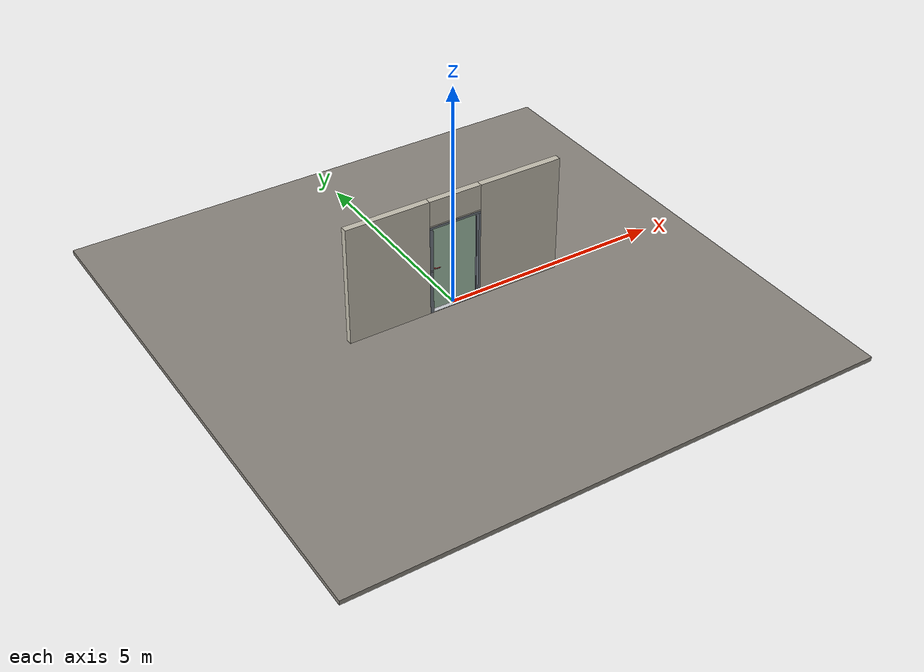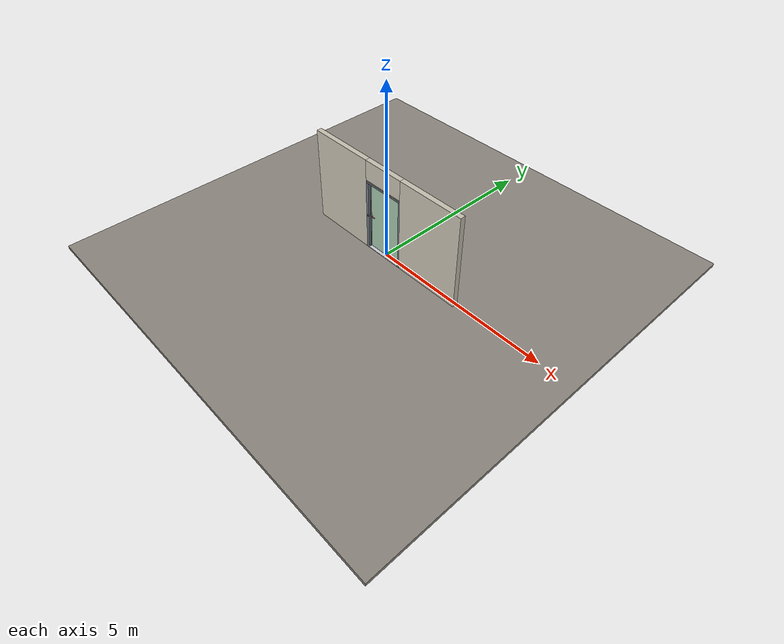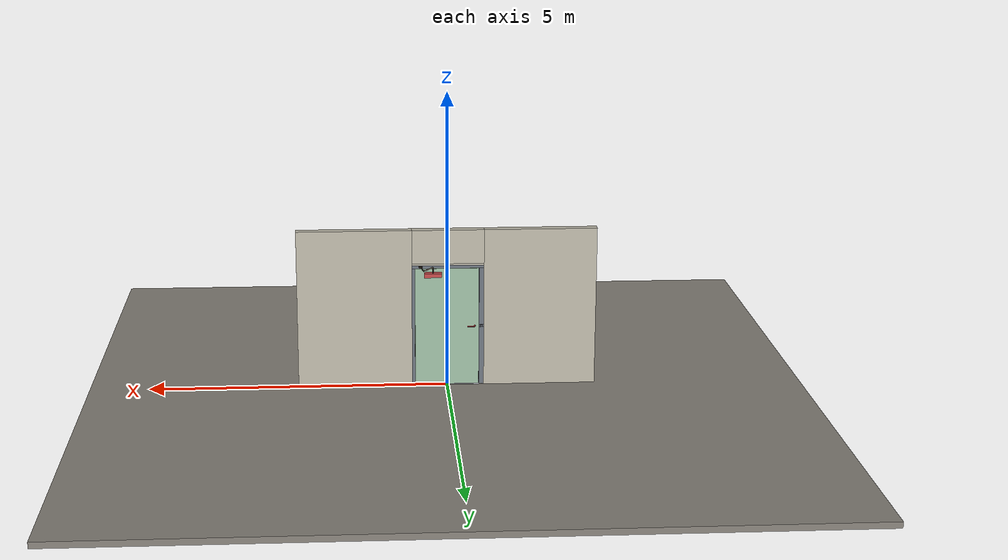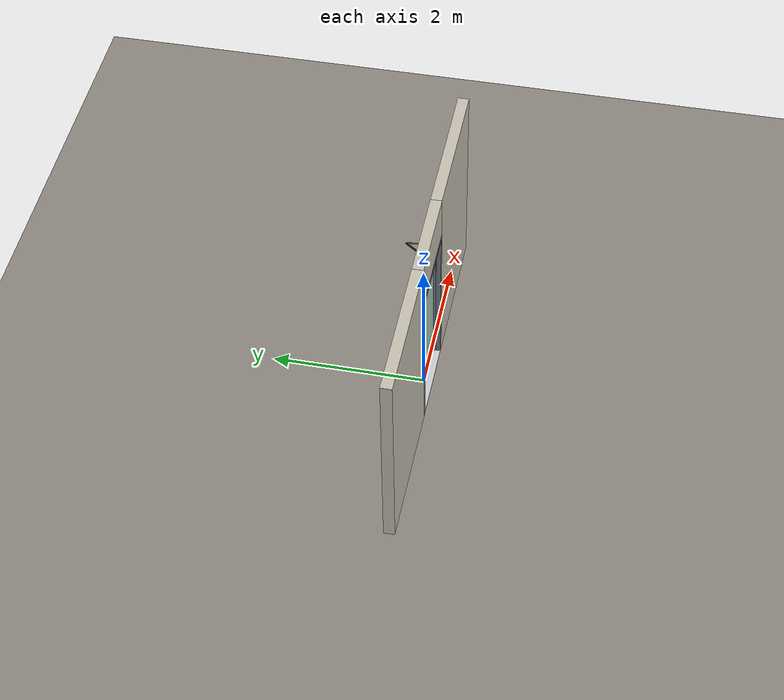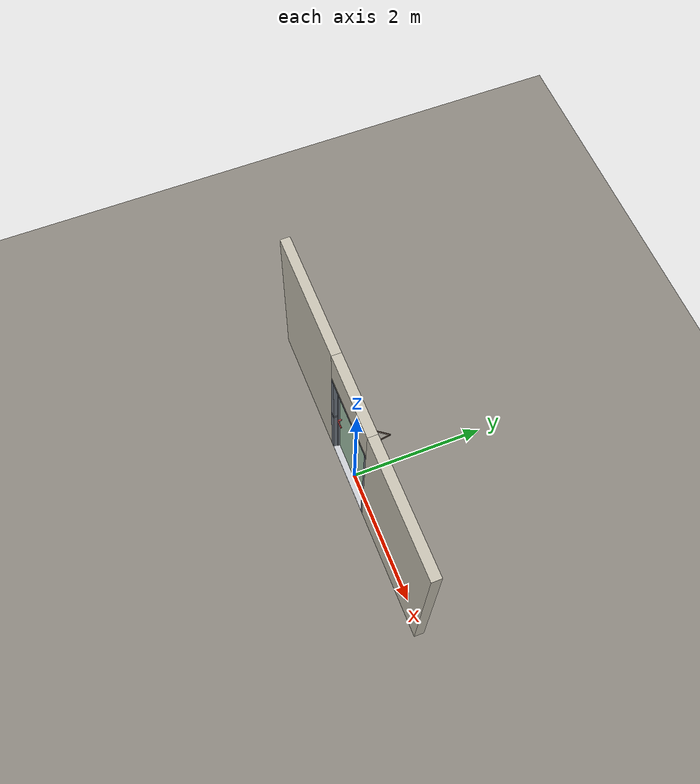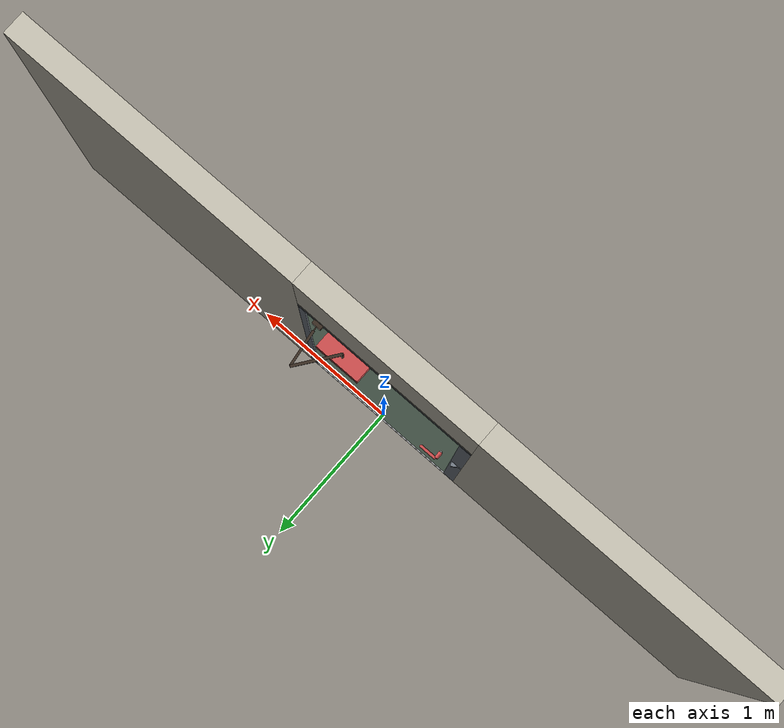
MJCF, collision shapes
<?xml version="1.0" ?>
<mujoco model="db0845_swing_single_full">
  <compiler angle="radian" meshdir="../../hardware" texturedir="../../textures" autolimits="true" inertiafromgeom="false"/>
  <option timestep="0.002" integrator="implicitfast" cone="elliptic" impratio="10" noslip_iterations="3">
    <flag multiccd="enable"/>
  </option>
  <size memory="16M"/>
  <default>
    <geom condim="4" solref="0.005 1" solimp="0.95 0.99 0.001"/>
    <joint solreflimit="0.005 1" solimplimit="0.95 0.99 0.001"/>
    <tendon solreflimit="0.005 1"/>
    <equality solref="0.002 1"/>
  </default>
  <visual>
    <headlight ambient="0.4 0.4 0.4" diffuse="0.7 0.7 0.7" specular="0.2 0.2 0.2"/>
    <quality shadowsize="4096"/>
    <map znear="0.01" zfar="60"/>
  </visual>
  <asset>
    <mesh name="closer_body_fdc4667657" file="closer_body_fdc4667657.obj"/>
    <mesh name="hinge_e22b26c0c1" file="hinge_e22b26c0c1.obj"/>
    <mesh name="hinge_jamb_e1d088f8dc" file="hinge_jamb_e1d088f8dc.obj"/>
    <mesh name="lever_6268dcb28c" file="lever_6268dcb28c.obj"/>
    <material name="mat_floor" rgba="0.55 0.53 0.5 1" specular="0.2" shininess="0.15" reflectance="0"/>
    <material name="mat_wall" rgba="0.78 0.76 0.7 1" specular="0.2" shininess="0.1" reflectance="0"/>
    <material name="mat_leaf" rgba="0.65 0.78 0.68 1" specular="0.23" shininess="0.62" reflectance="0.02"/>
    <material name="mat_hinge" rgba="0.65 0.66 0.68 1" specular="0.74" shininess="0.5" reflectance="0.36"/>
    <material name="mat_op_stainless" rgba="0.75 0.76 0.77 1" specular="0.8" shininess="0.65" reflectance="0.4"/>
    <material name="mat_trim" rgba="0.85 0.66 0.3 1" specular="0.8" shininess="0.75" reflectance="0.4"/>
    <material name="mat_bolt" rgba="0.85 0.66 0.3 1" specular="0.8" shininess="0.75" reflectance="0.4"/>
    <material name="mat_frame" rgba="0.45 0.48 0.52 1" specular="0.32" shininess="0.6" reflectance="0.08"/>
    <material name="mat_seal" rgba="0.1 0.1 0.1 1" specular="0.2" shininess="0.1" reflectance="0"/>
    <material name="mat_threshold" rgba="0.8 0.81 0.83 1" specular="0.8" shininess="0.6" reflectance="0.4"/>
    <material name="mat_closer" rgba="0.22 0.17 0.13 1" specular="0.8" shininess="0.6" reflectance="0.4"/>
    <texture name="skybox" type="skybox" builtin="gradient" rgb1="0.6 0.7 0.85" rgb2="0.9 0.92 0.95" width="256" height="256"/>
  </asset>
  <worldbody>
    <light name="sun" pos="1.5 -2.5 4" dir="-0.3 0.5 -0.8" directional="true" diffuse="0.8 0.8 0.8" specular="0.3 0.3 0.3" castshadow="true"/>
    <light name="fill" pos="-1.5 2.5 3" dir="0.3 -0.5 -0.7" directional="true" diffuse="0.35 0.35 0.4" castshadow="false"/>
    <camera name="robot_view" pos="0 -2.585687 1.734312" xyaxes="1 0 0 0 0.26963 0.962964" fovy="52"/>
    <camera name="far_view" pos="0 2.498687 1.734312" xyaxes="-1 0 0 0 -0.26963 0.962964" fovy="52"/>
    <camera name="iso" pos="-1.932062 -2.178937 2.141063" xyaxes="0.741536 -0.670913 0 0.242917 0.268487 0.932151" fovy="46"/>
    <camera name="detail_handle" pos="-0.187 -0.877 1.32" xyaxes="0.97561 0.219512 0 -0.070934 0.315262 0.94635" fovy="38"/>
    <geom name="floor" type="box" size="6 6 0.05" pos="0 0 -0.05" material="mat_floor" group="0" contype="1" conaffinity="1" friction="0.8 0.005 0.0001" density="2400"/>
    <geom name="wall_left" type="box" size="0.9415 0.0725 1.35" pos="-1.5585 -0.0435 1.35" material="mat_wall" group="0" contype="1" conaffinity="1" friction="0.6 0.005 0.0001" density="800"/>
    <geom name="wall_right" type="box" size="0.9565 0.0725 1.35" pos="1.5435 -0.0435 1.35" material="mat_wall" group="0" contype="1" conaffinity="1" friction="0.6 0.005 0.0001" density="800"/>
    <geom name="wall_header" type="box" size="0.602 0.0725 0.2875" pos="-0.015 -0.0435 2.4125" material="mat_wall" group="0" contype="1" conaffinity="1" friction="0.6 0.005 0.0001" density="800"/>
    <geom name="hinge_0_jamb" type="mesh" mesh="hinge_jamb_e1d088f8dc" pos="0.534 0.029 0.267" quat="0 0 0 1" material="mat_hinge" group="1" contype="0" conaffinity="0" density="7850"/>
    <geom name="hinge_1_jamb" type="mesh" mesh="hinge_jamb_e1d088f8dc" pos="0.534 0.029 1.029" quat="0 0 0 1" material="mat_hinge" group="1" contype="0" conaffinity="0" density="7850"/>
    <geom name="hinge_2_jamb" type="mesh" mesh="hinge_jamb_e1d088f8dc" pos="0.534 0.029 1.861" quat="0 0 0 1" material="mat_hinge" group="1" contype="0" conaffinity="0" density="7850"/>
    <geom name="jamb_hinge" type="box" size="0.025 0.0725 1.0225" pos="0.562 -0.0435 1.0225" material="mat_frame" group="0" contype="1" conaffinity="1" friction="0.6 0.005 0.0001" density="300"/>
    <geom name="strike_1040_wall_n" type="box" size="0.04 0.05325 0.0183" pos="-0.577 -0.06275 1.04" material="mat_frame" group="0" contype="1" conaffinity="1" friction="0.6 0.005 0.0001" density="300"/>
    <geom name="strike_1040_wall_p" type="box" size="0.04 0.008 0.0183" pos="-0.577 0.0175 1.04" material="mat_frame" group="0" contype="1" conaffinity="1" friction="0.6 0.005 0.0001" density="300"/>
    <geom name="strike_1040_ramp" type="box" size="0.04 0.018028 0.0183" pos="-0.580282 0.018312 1.04" quat="0.957092 0 0 0.289784" material="mat_frame" group="0" contype="1" conaffinity="1" friction="0.12 0.005 0.0001" density="300"/>
    <geom name="strike_1040_back" type="box" size="0.0285 0.0095 0.0183" pos="-0.5885 0 1.04" material="mat_frame" group="0" contype="1" conaffinity="1" friction="0.6 0.005 0.0001" density="300"/>
    <geom name="jamb_strike_0" type="box" size="0.04 0.0725 0.51085" pos="-0.577 -0.0435 0.51085" material="mat_frame" group="0" contype="1" conaffinity="1" friction="0.6 0.005 0.0001" density="300"/>
    <geom name="jamb_strike_1" type="box" size="0.04 0.0725 0.49335" pos="-0.577 -0.0435 1.55165" material="mat_frame" group="0" contype="1" conaffinity="1" friction="0.6 0.005 0.0001" density="300"/>
    <geom name="jamb_head" type="box" size="0.602 0.0725 0.025" pos="-0.015 -0.0435 2.07" material="mat_frame" group="0" contype="1" conaffinity="1" friction="0.6 0.005 0.0001" density="300"/>
    <geom name="head_stud" type="box" size="0.602 0.0725 0.015" pos="-0.015 -0.0435 2.11" material="mat_wall" group="0" contype="1" conaffinity="1" friction="0.6 0.005 0.0001" density="500"/>
    <geom name="stop_hinge" type="box" size="0.0055 0.016 1.0225" pos="0.5315 -0.0385 1.0225" material="mat_frame" group="0" contype="1" conaffinity="1" friction="0.6 0.005 0.0001" density="300"/>
    <geom name="stop_strike" type="box" size="0.0055 0.016 1.0225" pos="-0.5315 -0.0385 1.0225" material="mat_frame" group="0" contype="1" conaffinity="1" friction="0.6 0.005 0.0001" density="300"/>
    <geom name="stop_head" type="box" size="0.537 0.016 0.0055" pos="0 -0.0385 2.0395" material="mat_frame" group="0" contype="1" conaffinity="1" friction="0.6 0.005 0.0001" density="300"/>
    <geom name="seal_hinge" type="box" size="0.004 0.002 1.0225" pos="0.534 -0.024 1.0225" material="mat_seal" group="1" contype="0" conaffinity="0" density="1100"/>
    <geom name="seal_strike" type="box" size="0.004 0.002 1.0225" pos="-0.534 -0.024 1.0225" material="mat_seal" group="1" contype="0" conaffinity="0" density="1100"/>
    <geom name="seal_head" type="box" size="0.517 0.002 0.008" pos="0 -0.024 2.033" material="mat_seal" group="1" contype="0" conaffinity="0" density="1100"/>
    <geom name="threshold" type="box" size="0.587 0.0725 0.0065" pos="0 -0.0435 0.0065" material="mat_threshold" group="0" contype="1" conaffinity="1" friction="0.5 0.005 0.0001" density="2700"/>
    <geom name="closer_bracket" type="box" size="0.03 0.012 0.014" pos="0.437 0.041 2.075" material="mat_closer" group="1" contype="0" conaffinity="0" density="2700"/>
    <site name="approach_point" pos="0 -1.5 0" quat="1 0 0 0" size="0.05" rgba="0.2 0.9 0.2 0.5" group="4"/>
    <site name="goal_point" pos="0 1.5 0" quat="1 0 0 0" size="0.05" rgba="0.2 0.9 0.2 0.5" group="4"/>
    <site name="door_plane_center" pos="0 0 1.0225" quat="1 0 0 0" size="0.02" rgba="0.2 0.9 0.2 0.5" group="4"/>
    <body name="leaf" pos="0.537 0 0">
      <inertial pos="-0.479729 0.015786 1.227511" mass="58.179996" quat="-0.483958 -0.459871 -0.525292 0.527609" diaginertia="4.873228613 24.1713413 28.947283188"/>
      <joint name="leaf_hinge" type="hinge" axis="0 0 -1" pos="-0.003 0.029 0" limited="true" range="0 1.570796" solreflimit="0.02 1" damping="12.475663" frictionloss="1.494062" stiffness="12.528677" springref="-2.635554" armature="0.02"/>
      <geom name="leaf_slab" type="box" size="0.5335 0.022 1.012" pos="-0.5365 0 1.029" material="mat_leaf" group="0" contype="1" conaffinity="1" friction="0.4 0.005 0.0001" density="1"/>
      <geom name="hinge_0" type="mesh" mesh="hinge_e22b26c0c1" pos="-0.003 0.029 0.267" quat="0 0 0 1" material="mat_hinge" group="1" contype="0" conaffinity="0" density="7850"/>
      <geom name="hinge_1" type="mesh" mesh="hinge_e22b26c0c1" pos="-0.003 0.029 1.029" quat="0 0 0 1" material="mat_hinge" group="1" contype="0" conaffinity="0" density="7850"/>
      <geom name="hinge_2" type="mesh" mesh="hinge_e22b26c0c1" pos="-0.003 0.029 1.861" quat="0 0 0 1" material="mat_hinge" group="1" contype="0" conaffinity="0" density="7850"/>
      <geom name="leaf_latch_bolt_faceplate" type="box" size="0.0006 0.014 0.0283" pos="-1.0694 0 1.04" material="mat_bolt" group="1" contype="0" conaffinity="0" density="8500"/>
      <geom name="closer_body" type="mesh" mesh="closer_body_fdc4667657" pos="-0.3 0.022 1.944" quat="0 0 0.707107 0.707107" material="mat_closer" group="1" contype="0" conaffinity="0" density="2000"/>
      <geom name="closer_body_col" type="box" size="0.145 0.05 0.035" pos="-0.3 0.072 1.944" material="mat_closer" group="3" contype="1" conaffinity="1" rgba="0.8 0.3 0.3 0.25" friction="0.6 0.005 0.0001" density="2000"/>
      <geom name="closer_pinion_shaft" type="cylinder" size="0.008 0.0655" pos="-0.3 0.072 2.0095" material="mat_closer" group="1" contype="0" conaffinity="0" density="2700"/>
      <site name="leaf_edge_mid" pos="-1.07 0 1.012" quat="1 0 0 0" size="0.02" rgba="0.2 0.9 0.2 0.5" group="4"/>
      <body name="leaf_handle" pos="-1 0 1.04">
        <inertial pos="0.035149 0 0" mass="1.038236" quat="0.707107 0 0 -0.707107" diaginertia="0.002348364 0.00382535 0.005606687"/>
        <joint name="leaf_handle_hinge" type="hinge" axis="0 1 0" limited="true" range="0 0.96" damping="0.255791" frictionloss="0.05" stiffness="1.2" springref="-0.583333" armature="0.01"/>
        <geom name="leaf_handle_spindle" type="cylinder" size="0.006 0.03" pos="0 0 0" quat="0.707107 -0.707107 0 0" material="mat_op_stainless" group="1" contype="0" conaffinity="0" density="7850"/>
        <geom name="leaf_handle_lever_n" type="mesh" mesh="lever_6268dcb28c" pos="0 -0.022 0" quat="0 0 -0.707107 0.707107" material="mat_op_stainless" group="1" contype="0" conaffinity="0" density="3000"/>
        <geom name="leaf_handle_lever_col_n" type="capsule" size="0.0095 0.0505" pos="0.06 -0.077 0" quat="0.707107 0 0.707107 0" material="mat_op_stainless" group="3" contype="1" conaffinity="1" rgba="0.8 0.3 0.3 0.25" friction="0.7 0.01 0.0001" density="3000"/>
        <geom name="leaf_handle_hub_col_n" type="cylinder" size="0.012 0.022" pos="0 -0.052 0" quat="0.707107 -0.707107 0 0" material="mat_op_stainless" group="3" contype="1" conaffinity="1" rgba="0.8 0.3 0.3 0.25" friction="0.6 0.005 0.0001" density="3000"/>
        <geom name="leaf_handle_lever_p" type="mesh" mesh="lever_6268dcb28c" pos="0 0.022 0" quat="0 0 0.707107 0.707107" material="mat_op_stainless" group="1" contype="0" conaffinity="0" density="3000"/>
        <geom name="leaf_handle_lever_col_p" type="capsule" size="0.0095 0.0505" pos="0.06 0.077 0" quat="0.707107 0 0.707107 0" material="mat_op_stainless" group="3" contype="1" conaffinity="1" rgba="0.8 0.3 0.3 0.25" friction="0.7 0.01 0.0001" density="3000"/>
        <geom name="leaf_handle_hub_col_p" type="cylinder" size="0.012 0.022" pos="0 0.052 0" quat="0.707107 -0.707107 0 0" material="mat_op_stainless" group="3" contype="1" conaffinity="1" rgba="0.8 0.3 0.3 0.25" friction="0.6 0.005 0.0001" density="3000"/>
        <site name="leaf_handle_grip_n" pos="0.096 -0.077 0" quat="1 0 0 0" size="0.012" rgba="0.2 0.9 0.2 0.5" group="4"/>
        <site name="leaf_handle_grip_p" pos="0.096 0.077 0" quat="1 0 0 0" size="0.012" rgba="0.2 0.9 0.2 0.5" group="4"/>
      </body>
      <body name="leaf_latch_bolt" pos="-1.07 0 1.04">
        <inertial pos="0.0055 0 0" mass="0.074627" quat="0.92388 0.382683 0 0" diaginertia="0.000002271 0.000013255 0.000013255"/>
        <joint name="leaf_latch_bolt_slide" type="slide" axis="1 0 0" limited="true" range="0 0.019" damping="2" frictionloss="0.3" stiffness="600" springref="-0.01" armature="0.1"/>
        <geom name="leaf_latch_bolt_capsule" type="capsule" size="0.008 0.0165" pos="0.0055 0 0" quat="0.707107 0 -0.707107 0" material="mat_bolt" group="0" contype="1" conaffinity="1" friction="0.2 0.005 0.0001" density="8500"/>
      </body>
      <body name="closer_arm_main" pos="-0.3 0.072 2.075" quat="0.890947 0 0 0.454107">
        <inertial pos="0.14 0 0" mass="0.12096" quat="1 0 0 0" diaginertia="0.000003588 0.00079128 0.000792852"/>
        <joint name="closer_pinion" type="hinge" axis="0 0 1" limited="false" damping="0.01" armature="0.002"/>
        <geom name="closer_arm_main_geom" type="box" size="0.14 0.008 0.005" pos="0.14 0 0" material="mat_closer" group="1" contype="0" conaffinity="0" density="2700"/>
        <body name="closer_arm_fore" pos="0.28 0 0" quat="0.373215 0 0 -0.927745">
          <inertial pos="0.128088 0 0" mass="0.076531" quat="1 0 0 0" diaginertia="0.000001771 0.000437665 0.000438201"/>
          <joint name="closer_elbow" type="hinge" axis="0 0 1" limited="false" damping="0.01" armature="0.002"/>
          <geom name="closer_arm_fore_geom" type="box" size="0.1125 0.007 0.004" pos="0.1125 0 0" material="mat_closer" group="1" contype="0" conaffinity="0" density="2700"/>
          <geom name="closer_fore_neck" type="box" size="0.0175 0.003 0.003" pos="0.2425 0 0" material="mat_closer" group="1" contype="0" conaffinity="0" density="2700"/>
          <geom name="closer_fore_pivot" type="cylinder" size="0.005 0.012" pos="0.26 0 0" material="mat_closer" group="1" contype="0" conaffinity="0" density="2700"/>
        </body>
      </body>
    </body>
  </worldbody>
  <tendon>
    <fixed name="leaf_latch_bolt_coupling" limited="true" range="0 10">
      <joint joint="leaf_latch_bolt_slide" coef="1"/>
      <joint joint="leaf_handle_hinge" coef="-0.020879"/>
    </fixed>
  </tendon>
  <equality>
    <connect name="closer_arm_connect" body1="closer_arm_fore" body2="world" anchor="0.26 0 0" active="true"/>
  </equality>
  <contact>
    <exclude body1="closer_arm_main" body2="leaf"/>
    <exclude body1="closer_arm_fore" body2="leaf"/>
    <exclude body1="closer_arm_main" body2="closer_arm_fore"/>
  </contact>
  <sensor>
    <jointpos name="leaf_hinge_pos" joint="leaf_hinge"/>
    <jointvel name="leaf_hinge_vel" joint="leaf_hinge"/>
    <jointpos name="leaf_handle_hinge_pos" joint="leaf_handle_hinge"/>
    <jointvel name="leaf_handle_hinge_vel" joint="leaf_handle_hinge"/>
    <jointpos name="leaf_latch_bolt_slide_pos" joint="leaf_latch_bolt_slide"/>
    <jointvel name="leaf_latch_bolt_slide_vel" joint="leaf_latch_bolt_slide"/>
  </sensor>
</mujoco>
